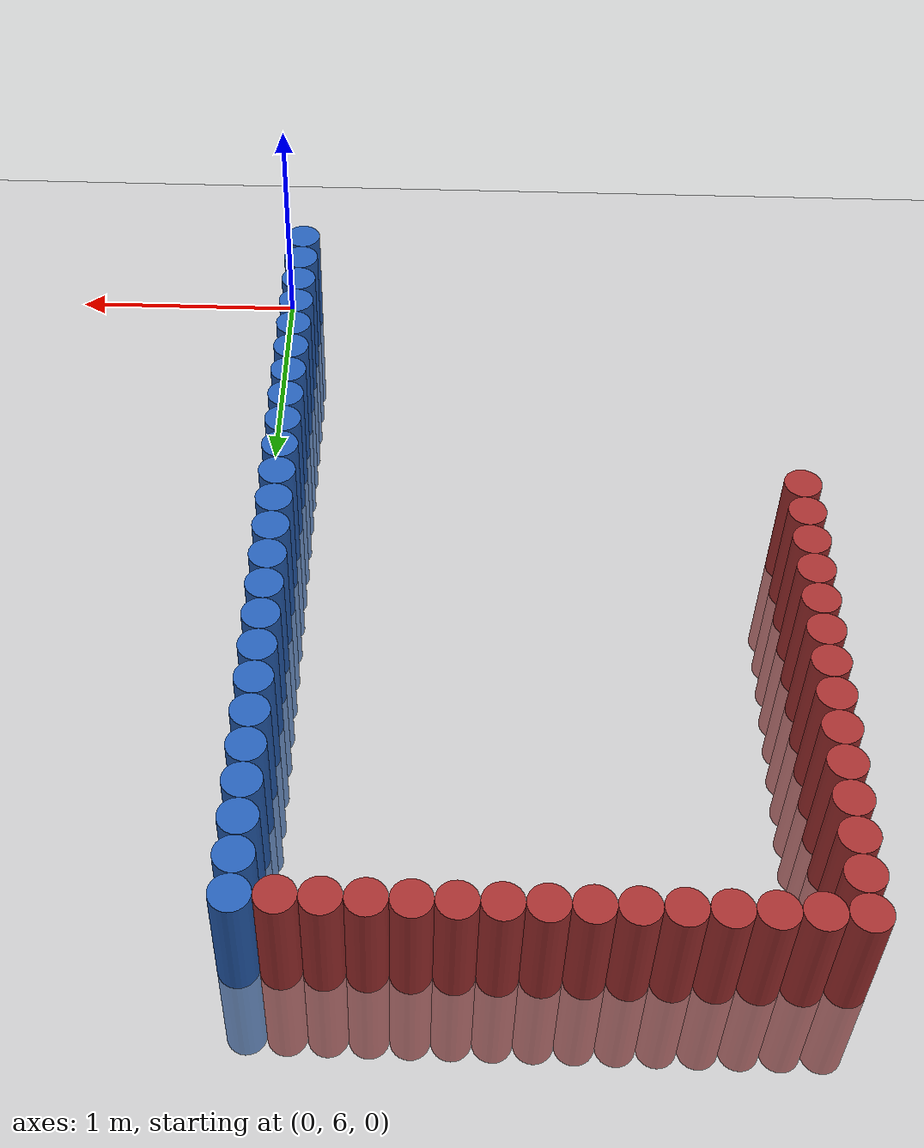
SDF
<sdf version="1.6">
 <world name="default">
  <model name="ground_plane">
   <static>1</static>
   <link name="link">
    <collision name="collision">
     <geometry><plane><normal>0 0 1</normal><size>100 100</size></plane></geometry>
     <surface><friction><ode><mu>100</mu><mu2>50</mu2></ode></friction></surface>
    </collision>
    <visual name="visual">
     <cast_shadows>0</cast_shadows>
     <geometry><plane><normal>0 0 1</normal><size>100 100</size></plane></geometry>
     <material>
      <script><uri>file://media/materials/scripts/gazebo.material</uri><name>Gazebo/Grey</name></script>
     </material>
    </visual>
   </link>
  </model>
  <model name="unit_cylinder_387">
   <static>1</static>
   <pose>-2.175000 7.575000 0.000000 0.000000 0.000000 0.000000</pose>
   <link name="link">
    <inertial>
     <mass>1</mass>
     <inertia><ixx>0.145833</ixx><ixy>0</ixy><ixz>0</ixz><iyy>0.145833</iyy><iyz>0</iyz><izz>0.125</izz></inertia>
    </inertial>
    <collision name="collision">
     <geometry><cylinder><radius>0.075000</radius><length>1</length></cylinder></geometry>
    </collision>
    <visual name="visual">
     <geometry><cylinder><radius>0.075000</radius><length>1</length></cylinder></geometry>
     <material>
      <ambient>0.648000 0.192000 0.192000 1</ambient>
      <diffuse>0.648000 0.192000 0.192000 1</diffuse>
     </material>
     <material>
      <script><name>Gazebo/Grey</name><uri>file://media/materials/scripts/gazebo.material</uri></script>
     </material>
    </visual>
   </link>
  </model>
  <model name="unit_cylinder_388">
   <static>1</static>
   <pose>-2.175000 7.725000 0.000000 0.000000 0.000000 0.000000</pose>
   <link name="link">
    <inertial>
     <mass>1</mass>
     <inertia><ixx>0.145833</ixx><ixy>0</ixy><ixz>0</ixz><iyy>0.145833</iyy><iyz>0</iyz><izz>0.125</izz></inertia>
    </inertial>
    <collision name="collision">
     <geometry><cylinder><radius>0.075000</radius><length>1</length></cylinder></geometry>
    </collision>
    <visual name="visual">
     <geometry><cylinder><radius>0.075000</radius><length>1</length></cylinder></geometry>
     <material>
      <ambient>0.648000 0.192000 0.192000 1</ambient>
      <diffuse>0.648000 0.192000 0.192000 1</diffuse>
     </material>
     <material>
      <script><name>Gazebo/Grey</name><uri>file://media/materials/scripts/gazebo.material</uri></script>
     </material>
    </visual>
   </link>
  </model>
  <model name="unit_cylinder_389">
   <static>1</static>
   <pose>-2.175000 7.875000 0.000000 0.000000 0.000000 0.000000</pose>
   <link name="link">
    <inertial>
     <mass>1</mass>
     <inertia><ixx>0.145833</ixx><ixy>0</ixy><ixz>0</ixz><iyy>0.145833</iyy><iyz>0</iyz><izz>0.125</izz></inertia>
    </inertial>
    <collision name="collision">
     <geometry><cylinder><radius>0.075000</radius><length>1</length></cylinder></geometry>
    </collision>
    <visual name="visual">
     <geometry><cylinder><radius>0.075000</radius><length>1</length></cylinder></geometry>
     <material>
      <ambient>0.648000 0.192000 0.192000 1</ambient>
      <diffuse>0.648000 0.192000 0.192000 1</diffuse>
     </material>
     <material>
      <script><name>Gazebo/Grey</name><uri>file://media/materials/scripts/gazebo.material</uri></script>
     </material>
    </visual>
   </link>
  </model>
  <model name="unit_cylinder_390">
   <static>1</static>
   <pose>-2.175000 8.025000 0.000000 0.000000 0.000000 0.000000</pose>
   <link name="link">
    <inertial>
     <mass>1</mass>
     <inertia><ixx>0.145833</ixx><ixy>0</ixy><ixz>0</ixz><iyy>0.145833</iyy><iyz>0</iyz><izz>0.125</izz></inertia>
    </inertial>
    <collision name="collision">
     <geometry><cylinder><radius>0.075000</radius><length>1</length></cylinder></geometry>
    </collision>
    <visual name="visual">
     <geometry><cylinder><radius>0.075000</radius><length>1</length></cylinder></geometry>
     <material>
      <ambient>0.648000 0.192000 0.192000 1</ambient>
      <diffuse>0.648000 0.192000 0.192000 1</diffuse>
     </material>
     <material>
      <script><name>Gazebo/Grey</name><uri>file://media/materials/scripts/gazebo.material</uri></script>
     </material>
    </visual>
   </link>
  </model>
  <model name="unit_cylinder_391">
   <static>1</static>
   <pose>-2.175000 8.175000 0.000000 0.000000 0.000000 0.000000</pose>
   <link name="link">
    <inertial>
     <mass>1</mass>
     <inertia><ixx>0.145833</ixx><ixy>0</ixy><ixz>0</ixz><iyy>0.145833</iyy><iyz>0</iyz><izz>0.125</izz></inertia>
    </inertial>
    <collision name="collision">
     <geometry><cylinder><radius>0.075000</radius><length>1</length></cylinder></geometry>
    </collision>
    <visual name="visual">
     <geometry><cylinder><radius>0.075000</radius><length>1</length></cylinder></geometry>
     <material>
      <ambient>0.648000 0.192000 0.192000 1</ambient>
      <diffuse>0.648000 0.192000 0.192000 1</diffuse>
     </material>
     <material>
      <script><name>Gazebo/Grey</name><uri>file://media/materials/scripts/gazebo.material</uri></script>
     </material>
    </visual>
   </link>
  </model>
  <model name="unit_cylinder_392">
   <static>1</static>
   <pose>-2.175000 8.325000 0.000000 0.000000 0.000000 0.000000</pose>
   <link name="link">
    <inertial>
     <mass>1</mass>
     <inertia><ixx>0.145833</ixx><ixy>0</ixy><ixz>0</ixz><iyy>0.145833</iyy><iyz>0</iyz><izz>0.125</izz></inertia>
    </inertial>
    <collision name="collision">
     <geometry><cylinder><radius>0.075000</radius><length>1</length></cylinder></geometry>
    </collision>
    <visual name="visual">
     <geometry><cylinder><radius>0.075000</radius><length>1</length></cylinder></geometry>
     <material>
      <ambient>0.648000 0.192000 0.192000 1</ambient>
      <diffuse>0.648000 0.192000 0.192000 1</diffuse>
     </material>
     <material>
      <script><name>Gazebo/Grey</name><uri>file://media/materials/scripts/gazebo.material</uri></script>
     </material>
    </visual>
   </link>
  </model>
  <model name="unit_cylinder_393">
   <static>1</static>
   <pose>-2.175000 8.475000 0.000000 0.000000 0.000000 0.000000</pose>
   <link name="link">
    <inertial>
     <mass>1</mass>
     <inertia><ixx>0.145833</ixx><ixy>0</ixy><ixz>0</ixz><iyy>0.145833</iyy><iyz>0</iyz><izz>0.125</izz></inertia>
    </inertial>
    <collision name="collision">
     <geometry><cylinder><radius>0.075000</radius><length>1</length></cylinder></geometry>
    </collision>
    <visual name="visual">
     <geometry><cylinder><radius>0.075000</radius><length>1</length></cylinder></geometry>
     <material>
      <ambient>0.648000 0.192000 0.192000 1</ambient>
      <diffuse>0.648000 0.192000 0.192000 1</diffuse>
     </material>
     <material>
      <script><name>Gazebo/Grey</name><uri>file://media/materials/scripts/gazebo.material</uri></script>
     </material>
    </visual>
   </link>
  </model>
  <model name="unit_cylinder_394">
   <static>1</static>
   <pose>-2.175000 8.625000 0.000000 0.000000 0.000000 0.000000</pose>
   <link name="link">
    <inertial>
     <mass>1</mass>
     <inertia><ixx>0.145833</ixx><ixy>0</ixy><ixz>0</ixz><iyy>0.145833</iyy><iyz>0</iyz><izz>0.125</izz></inertia>
    </inertial>
    <collision name="collision">
     <geometry><cylinder><radius>0.075000</radius><length>1</length></cylinder></geometry>
    </collision>
    <visual name="visual">
     <geometry><cylinder><radius>0.075000</radius><length>1</length></cylinder></geometry>
     <material>
      <ambient>0.648000 0.192000 0.192000 1</ambient>
      <diffuse>0.648000 0.192000 0.192000 1</diffuse>
     </material>
     <material>
      <script><name>Gazebo/Grey</name><uri>file://media/materials/scripts/gazebo.material</uri></script>
     </material>
    </visual>
   </link>
  </model>
  <model name="unit_cylinder_395">
   <static>1</static>
   <pose>-2.175000 8.775000 0.000000 0.000000 0.000000 0.000000</pose>
   <link name="link">
    <inertial>
     <mass>1</mass>
     <inertia><ixx>0.145833</ixx><ixy>0</ixy><ixz>0</ixz><iyy>0.145833</iyy><iyz>0</iyz><izz>0.125</izz></inertia>
    </inertial>
    <collision name="collision">
     <geometry><cylinder><radius>0.075000</radius><length>1</length></cylinder></geometry>
    </collision>
    <visual name="visual">
     <geometry><cylinder><radius>0.075000</radius><length>1</length></cylinder></geometry>
     <material>
      <ambient>0.648000 0.192000 0.192000 1</ambient>
      <diffuse>0.648000 0.192000 0.192000 1</diffuse>
     </material>
     <material>
      <script><name>Gazebo/Grey</name><uri>file://media/materials/scripts/gazebo.material</uri></script>
     </material>
    </visual>
   </link>
  </model>
  <model name="unit_cylinder_396">
   <static>1</static>
   <pose>-2.175000 8.925000 0.000000 0.000000 0.000000 0.000000</pose>
   <link name="link">
    <inertial>
     <mass>1</mass>
     <inertia><ixx>0.145833</ixx><ixy>0</ixy><ixz>0</ixz><iyy>0.145833</iyy><iyz>0</iyz><izz>0.125</izz></inertia>
    </inertial>
    <collision name="collision">
     <geometry><cylinder><radius>0.075000</radius><length>1</length></cylinder></geometry>
    </collision>
    <visual name="visual">
     <geometry><cylinder><radius>0.075000</radius><length>1</length></cylinder></geometry>
     <material>
      <ambient>0.648000 0.192000 0.192000 1</ambient>
      <diffuse>0.648000 0.192000 0.192000 1</diffuse>
     </material>
     <material>
      <script><name>Gazebo/Grey</name><uri>file://media/materials/scripts/gazebo.material</uri></script>
     </material>
    </visual>
   </link>
  </model>
  <model name="unit_cylinder_397">
   <static>1</static>
   <pose>-2.175000 9.075000 0.000000 0.000000 0.000000 0.000000</pose>
   <link name="link">
    <inertial>
     <mass>1</mass>
     <inertia><ixx>0.145833</ixx><ixy>0</ixy><ixz>0</ixz><iyy>0.145833</iyy><iyz>0</iyz><izz>0.125</izz></inertia>
    </inertial>
    <collision name="collision">
     <geometry><cylinder><radius>0.075000</radius><length>1</length></cylinder></geometry>
    </collision>
    <visual name="visual">
     <geometry><cylinder><radius>0.075000</radius><length>1</length></cylinder></geometry>
     <material>
      <ambient>0.648000 0.192000 0.192000 1</ambient>
      <diffuse>0.648000 0.192000 0.192000 1</diffuse>
     </material>
     <material>
      <script><name>Gazebo/Grey</name><uri>file://media/materials/scripts/gazebo.material</uri></script>
     </material>
    </visual>
   </link>
  </model>
  <model name="unit_cylinder_398">
   <static>1</static>
   <pose>-2.175000 9.225000 0.000000 0.000000 0.000000 0.000000</pose>
   <link name="link">
    <inertial>
     <mass>1</mass>
     <inertia><ixx>0.145833</ixx><ixy>0</ixy><ixz>0</ixz><iyy>0.145833</iyy><iyz>0</iyz><izz>0.125</izz></inertia>
    </inertial>
    <collision name="collision">
     <geometry><cylinder><radius>0.075000</radius><length>1</length></cylinder></geometry>
    </collision>
    <visual name="visual">
     <geometry><cylinder><radius>0.075000</radius><length>1</length></cylinder></geometry>
     <material>
      <ambient>0.648000 0.192000 0.192000 1</ambient>
      <diffuse>0.648000 0.192000 0.192000 1</diffuse>
     </material>
     <material>
      <script><name>Gazebo/Grey</name><uri>file://media/materials/scripts/gazebo.material</uri></script>
     </material>
    </visual>
   </link>
  </model>
  <model name="unit_cylinder_399">
   <static>1</static>
   <pose>-2.175000 9.375000 0.000000 0.000000 0.000000 0.000000</pose>
   <link name="link">
    <inertial>
     <mass>1</mass>
     <inertia><ixx>0.145833</ixx><ixy>0</ixy><ixz>0</ixz><iyy>0.145833</iyy><iyz>0</iyz><izz>0.125</izz></inertia>
    </inertial>
    <collision name="collision">
     <geometry><cylinder><radius>0.075000</radius><length>1</length></cylinder></geometry>
    </collision>
    <visual name="visual">
     <geometry><cylinder><radius>0.075000</radius><length>1</length></cylinder></geometry>
     <material>
      <ambient>0.648000 0.192000 0.192000 1</ambient>
      <diffuse>0.648000 0.192000 0.192000 1</diffuse>
     </material>
     <material>
      <script><name>Gazebo/Grey</name><uri>file://media/materials/scripts/gazebo.material</uri></script>
     </material>
    </visual>
   </link>
  </model>
  <model name="unit_cylinder_400">
   <static>1</static>
   <pose>-2.175000 9.525000 0.000000 0.000000 0.000000 0.000000</pose>
   <link name="link">
    <inertial>
     <mass>1</mass>
     <inertia><ixx>0.145833</ixx><ixy>0</ixy><ixz>0</ixz><iyy>0.145833</iyy><iyz>0</iyz><izz>0.125</izz></inertia>
    </inertial>
    <collision name="collision">
     <geometry><cylinder><radius>0.075000</radius><length>1</length></cylinder></geometry>
    </collision>
    <visual name="visual">
     <geometry><cylinder><radius>0.075000</radius><length>1</length></cylinder></geometry>
     <material>
      <ambient>0.648000 0.192000 0.192000 1</ambient>
      <diffuse>0.648000 0.192000 0.192000 1</diffuse>
     </material>
     <material>
      <script><name>Gazebo/Grey</name><uri>file://media/materials/scripts/gazebo.material</uri></script>
     </material>
    </visual>
   </link>
  </model>
  <model name="unit_cylinder_402">
   <static>1</static>
   <pose>-2.025000 9.525000 0.000000 0.000000 0.000000 0.000000</pose>
   <link name="link">
    <inertial>
     <mass>1</mass>
     <inertia><ixx>0.145833</ixx><ixy>0</ixy><ixz>0</ixz><iyy>0.145833</iyy><iyz>0</iyz><izz>0.125</izz></inertia>
    </inertial>
    <collision name="collision">
     <geometry><cylinder><radius>0.075000</radius><length>1</length></cylinder></geometry>
    </collision>
    <visual name="visual">
     <geometry><cylinder><radius>0.075000</radius><length>1</length></cylinder></geometry>
     <material>
      <ambient>0.648000 0.192000 0.192000 1</ambient>
      <diffuse>0.648000 0.192000 0.192000 1</diffuse>
     </material>
     <material>
      <script><name>Gazebo/Grey</name><uri>file://media/materials/scripts/gazebo.material</uri></script>
     </material>
    </visual>
   </link>
  </model>
  <model name="unit_cylinder_404">
   <static>1</static>
   <pose>-1.875000 9.525000 0.000000 0.000000 0.000000 0.000000</pose>
   <link name="link">
    <inertial>
     <mass>1</mass>
     <inertia><ixx>0.145833</ixx><ixy>0</ixy><ixz>0</ixz><iyy>0.145833</iyy><iyz>0</iyz><izz>0.125</izz></inertia>
    </inertial>
    <collision name="collision">
     <geometry><cylinder><radius>0.075000</radius><length>1</length></cylinder></geometry>
    </collision>
    <visual name="visual">
     <geometry><cylinder><radius>0.075000</radius><length>1</length></cylinder></geometry>
     <material>
      <ambient>0.648000 0.192000 0.192000 1</ambient>
      <diffuse>0.648000 0.192000 0.192000 1</diffuse>
     </material>
     <material>
      <script><name>Gazebo/Grey</name><uri>file://media/materials/scripts/gazebo.material</uri></script>
     </material>
    </visual>
   </link>
  </model>
  <model name="unit_cylinder_406">
   <static>1</static>
   <pose>-1.725000 9.525000 0.000000 0.000000 0.000000 0.000000</pose>
   <link name="link">
    <inertial>
     <mass>1</mass>
     <inertia><ixx>0.145833</ixx><ixy>0</ixy><ixz>0</ixz><iyy>0.145833</iyy><iyz>0</iyz><izz>0.125</izz></inertia>
    </inertial>
    <collision name="collision">
     <geometry><cylinder><radius>0.075000</radius><length>1</length></cylinder></geometry>
    </collision>
    <visual name="visual">
     <geometry><cylinder><radius>0.075000</radius><length>1</length></cylinder></geometry>
     <material>
      <ambient>0.648000 0.192000 0.192000 1</ambient>
      <diffuse>0.648000 0.192000 0.192000 1</diffuse>
     </material>
     <material>
      <script><name>Gazebo/Grey</name><uri>file://media/materials/scripts/gazebo.material</uri></script>
     </material>
    </visual>
   </link>
  </model>
  <model name="unit_cylinder_408">
   <static>1</static>
   <pose>-1.575000 9.525000 0.000000 0.000000 0.000000 0.000000</pose>
   <link name="link">
    <inertial>
     <mass>1</mass>
     <inertia><ixx>0.145833</ixx><ixy>0</ixy><ixz>0</ixz><iyy>0.145833</iyy><iyz>0</iyz><izz>0.125</izz></inertia>
    </inertial>
    <collision name="collision">
     <geometry><cylinder><radius>0.075000</radius><length>1</length></cylinder></geometry>
    </collision>
    <visual name="visual">
     <geometry><cylinder><radius>0.075000</radius><length>1</length></cylinder></geometry>
     <material>
      <ambient>0.648000 0.192000 0.192000 1</ambient>
      <diffuse>0.648000 0.192000 0.192000 1</diffuse>
     </material>
     <material>
      <script><name>Gazebo/Grey</name><uri>file://media/materials/scripts/gazebo.material</uri></script>
     </material>
    </visual>
   </link>
  </model>
  <model name="unit_cylinder_410">
   <static>1</static>
   <pose>-1.425000 9.525000 0.000000 0.000000 0.000000 0.000000</pose>
   <link name="link">
    <inertial>
     <mass>1</mass>
     <inertia><ixx>0.145833</ixx><ixy>0</ixy><ixz>0</ixz><iyy>0.145833</iyy><iyz>0</iyz><izz>0.125</izz></inertia>
    </inertial>
    <collision name="collision">
     <geometry><cylinder><radius>0.075000</radius><length>1</length></cylinder></geometry>
    </collision>
    <visual name="visual">
     <geometry><cylinder><radius>0.075000</radius><length>1</length></cylinder></geometry>
     <material>
      <ambient>0.648000 0.192000 0.192000 1</ambient>
      <diffuse>0.648000 0.192000 0.192000 1</diffuse>
     </material>
     <material>
      <script><name>Gazebo/Grey</name><uri>file://media/materials/scripts/gazebo.material</uri></script>
     </material>
    </visual>
   </link>
  </model>
  <model name="unit_cylinder_412">
   <static>1</static>
   <pose>-1.275000 9.525000 0.000000 0.000000 0.000000 0.000000</pose>
   <link name="link">
    <inertial>
     <mass>1</mass>
     <inertia><ixx>0.145833</ixx><ixy>0</ixy><ixz>0</ixz><iyy>0.145833</iyy><iyz>0</iyz><izz>0.125</izz></inertia>
    </inertial>
    <collision name="collision">
     <geometry><cylinder><radius>0.075000</radius><length>1</length></cylinder></geometry>
    </collision>
    <visual name="visual">
     <geometry><cylinder><radius>0.075000</radius><length>1</length></cylinder></geometry>
     <material>
      <ambient>0.648000 0.192000 0.192000 1</ambient>
      <diffuse>0.648000 0.192000 0.192000 1</diffuse>
     </material>
     <material>
      <script><name>Gazebo/Grey</name><uri>file://media/materials/scripts/gazebo.material</uri></script>
     </material>
    </visual>
   </link>
  </model>
  <model name="unit_cylinder_414">
   <static>1</static>
   <pose>-1.125000 9.525000 0.000000 0.000000 0.000000 0.000000</pose>
   <link name="link">
    <inertial>
     <mass>1</mass>
     <inertia><ixx>0.145833</ixx><ixy>0</ixy><ixz>0</ixz><iyy>0.145833</iyy><iyz>0</iyz><izz>0.125</izz></inertia>
    </inertial>
    <collision name="collision">
     <geometry><cylinder><radius>0.075000</radius><length>1</length></cylinder></geometry>
    </collision>
    <visual name="visual">
     <geometry><cylinder><radius>0.075000</radius><length>1</length></cylinder></geometry>
     <material>
      <ambient>0.648000 0.192000 0.192000 1</ambient>
      <diffuse>0.648000 0.192000 0.192000 1</diffuse>
     </material>
     <material>
      <script><name>Gazebo/Grey</name><uri>file://media/materials/scripts/gazebo.material</uri></script>
     </material>
    </visual>
   </link>
  </model>
  <model name="unit_cylinder_416">
   <static>1</static>
   <pose>-0.975000 9.525000 0.000000 0.000000 0.000000 0.000000</pose>
   <link name="link">
    <inertial>
     <mass>1</mass>
     <inertia><ixx>0.145833</ixx><ixy>0</ixy><ixz>0</ixz><iyy>0.145833</iyy><iyz>0</iyz><izz>0.125</izz></inertia>
    </inertial>
    <collision name="collision">
     <geometry><cylinder><radius>0.075000</radius><length>1</length></cylinder></geometry>
    </collision>
    <visual name="visual">
     <geometry><cylinder><radius>0.075000</radius><length>1</length></cylinder></geometry>
     <material>
      <ambient>0.648000 0.192000 0.192000 1</ambient>
      <diffuse>0.648000 0.192000 0.192000 1</diffuse>
     </material>
     <material>
      <script><name>Gazebo/Grey</name><uri>file://media/materials/scripts/gazebo.material</uri></script>
     </material>
    </visual>
   </link>
  </model>
  <model name="unit_cylinder_418">
   <static>1</static>
   <pose>-0.825000 9.525000 0.000000 0.000000 0.000000 0.000000</pose>
   <link name="link">
    <inertial>
     <mass>1</mass>
     <inertia><ixx>0.145833</ixx><ixy>0</ixy><ixz>0</ixz><iyy>0.145833</iyy><iyz>0</iyz><izz>0.125</izz></inertia>
    </inertial>
    <collision name="collision">
     <geometry><cylinder><radius>0.075000</radius><length>1</length></cylinder></geometry>
    </collision>
    <visual name="visual">
     <geometry><cylinder><radius>0.075000</radius><length>1</length></cylinder></geometry>
     <material>
      <ambient>0.648000 0.192000 0.192000 1</ambient>
      <diffuse>0.648000 0.192000 0.192000 1</diffuse>
     </material>
     <material>
      <script><name>Gazebo/Grey</name><uri>file://media/materials/scripts/gazebo.material</uri></script>
     </material>
    </visual>
   </link>
  </model>
  <model name="unit_cylinder_420">
   <static>1</static>
   <pose>-0.675000 9.525000 0.000000 0.000000 0.000000 0.000000</pose>
   <link name="link">
    <inertial>
     <mass>1</mass>
     <inertia><ixx>0.145833</ixx><ixy>0</ixy><ixz>0</ixz><iyy>0.145833</iyy><iyz>0</iyz><izz>0.125</izz></inertia>
    </inertial>
    <collision name="collision">
     <geometry><cylinder><radius>0.075000</radius><length>1</length></cylinder></geometry>
    </collision>
    <visual name="visual">
     <geometry><cylinder><radius>0.075000</radius><length>1</length></cylinder></geometry>
     <material>
      <ambient>0.648000 0.192000 0.192000 1</ambient>
      <diffuse>0.648000 0.192000 0.192000 1</diffuse>
     </material>
     <material>
      <script><name>Gazebo/Grey</name><uri>file://media/materials/scripts/gazebo.material</uri></script>
     </material>
    </visual>
   </link>
  </model>
  <model name="unit_cylinder_422">
   <static>1</static>
   <pose>-0.525000 9.525000 0.000000 0.000000 0.000000 0.000000</pose>
   <link name="link">
    <inertial>
     <mass>1</mass>
     <inertia><ixx>0.145833</ixx><ixy>0</ixy><ixz>0</ixz><iyy>0.145833</iyy><iyz>0</iyz><izz>0.125</izz></inertia>
    </inertial>
    <collision name="collision">
     <geometry><cylinder><radius>0.075000</radius><length>1</length></cylinder></geometry>
    </collision>
    <visual name="visual">
     <geometry><cylinder><radius>0.075000</radius><length>1</length></cylinder></geometry>
     <material>
      <ambient>0.648000 0.192000 0.192000 1</ambient>
      <diffuse>0.648000 0.192000 0.192000 1</diffuse>
     </material>
     <material>
      <script><name>Gazebo/Grey</name><uri>file://media/materials/scripts/gazebo.material</uri></script>
     </material>
    </visual>
   </link>
  </model>
  <model name="unit_cylinder_424">
   <static>1</static>
   <pose>-0.375000 9.525000 0.000000 0.000000 0.000000 0.000000</pose>
   <link name="link">
    <inertial>
     <mass>1</mass>
     <inertia><ixx>0.145833</ixx><ixy>0</ixy><ixz>0</ixz><iyy>0.145833</iyy><iyz>0</iyz><izz>0.125</izz></inertia>
    </inertial>
    <collision name="collision">
     <geometry><cylinder><radius>0.075000</radius><length>1</length></cylinder></geometry>
    </collision>
    <visual name="visual">
     <geometry><cylinder><radius>0.075000</radius><length>1</length></cylinder></geometry>
     <material>
      <ambient>0.648000 0.192000 0.192000 1</ambient>
      <diffuse>0.648000 0.192000 0.192000 1</diffuse>
     </material>
     <material>
      <script><name>Gazebo/Grey</name><uri>file://media/materials/scripts/gazebo.material</uri></script>
     </material>
    </visual>
   </link>
  </model>
  <model name="unit_cylinder_426">
   <static>1</static>
   <pose>-0.225000 9.525000 0.000000 0.000000 0.000000 0.000000</pose>
   <link name="link">
    <inertial>
     <mass>1</mass>
     <inertia><ixx>0.145833</ixx><ixy>0</ixy><ixz>0</ixz><iyy>0.145833</iyy><iyz>0</iyz><izz>0.125</izz></inertia>
    </inertial>
    <collision name="collision">
     <geometry><cylinder><radius>0.075000</radius><length>1</length></cylinder></geometry>
    </collision>
    <visual name="visual">
     <geometry><cylinder><radius>0.075000</radius><length>1</length></cylinder></geometry>
     <material>
      <ambient>0.648000 0.192000 0.192000 1</ambient>
      <diffuse>0.648000 0.192000 0.192000 1</diffuse>
     </material>
     <material>
      <script><name>Gazebo/Grey</name><uri>file://media/materials/scripts/gazebo.material</uri></script>
     </material>
    </visual>
   </link>
  </model>
  <model name="unit_cylinder_433">
   <static>1</static>
   <pose>-0.075000 6.075000 0.000000 0.000000 0.000000 0.000000</pose>
   <link name="link">
    <inertial>
     <mass>1</mass>
     <inertia><ixx>0.145833</ixx><ixy>0</ixy><ixz>0</ixz><iyy>0.145833</iyy><iyz>0</iyz><izz>0.125</izz></inertia>
    </inertial>
    <collision name="collision">
     <geometry><cylinder><radius>0.075000</radius><length>1</length></cylinder></geometry>
    </collision>
    <visual name="visual">
     <geometry><cylinder><radius>0.075000</radius><length>1</length></cylinder></geometry>
     <material>
      <ambient>0.152000 0.379000 0.720000 1</ambient>
      <diffuse>0.152000 0.379000 0.720000 1</diffuse>
     </material>
     <material>
      <script><name>Gazebo/Grey</name><uri>file://media/materials/scripts/gazebo.material</uri></script>
     </material>
    </visual>
   </link>
  </model>
  <model name="unit_cylinder_434">
   <static>1</static>
   <pose>-0.075000 6.225000 0.000000 0.000000 0.000000 0.000000</pose>
   <link name="link">
    <inertial>
     <mass>1</mass>
     <inertia><ixx>0.145833</ixx><ixy>0</ixy><ixz>0</ixz><iyy>0.145833</iyy><iyz>0</iyz><izz>0.125</izz></inertia>
    </inertial>
    <collision name="collision">
     <geometry><cylinder><radius>0.075000</radius><length>1</length></cylinder></geometry>
    </collision>
    <visual name="visual">
     <geometry><cylinder><radius>0.075000</radius><length>1</length></cylinder></geometry>
     <material>
      <ambient>0.152000 0.379000 0.720000 1</ambient>
      <diffuse>0.152000 0.379000 0.720000 1</diffuse>
     </material>
     <material>
      <script><name>Gazebo/Grey</name><uri>file://media/materials/scripts/gazebo.material</uri></script>
     </material>
    </visual>
   </link>
  </model>
  <model name="unit_cylinder_435">
   <static>1</static>
   <pose>-0.075000 6.375000 0.000000 0.000000 0.000000 0.000000</pose>
   <link name="link">
    <inertial>
     <mass>1</mass>
     <inertia><ixx>0.145833</ixx><ixy>0</ixy><ixz>0</ixz><iyy>0.145833</iyy><iyz>0</iyz><izz>0.125</izz></inertia>
    </inertial>
    <collision name="collision">
     <geometry><cylinder><radius>0.075000</radius><length>1</length></cylinder></geometry>
    </collision>
    <visual name="visual">
     <geometry><cylinder><radius>0.075000</radius><length>1</length></cylinder></geometry>
     <material>
      <ambient>0.152000 0.379000 0.720000 1</ambient>
      <diffuse>0.152000 0.379000 0.720000 1</diffuse>
     </material>
     <material>
      <script><name>Gazebo/Grey</name><uri>file://media/materials/scripts/gazebo.material</uri></script>
     </material>
    </visual>
   </link>
  </model>
  <model name="unit_cylinder_436">
   <static>1</static>
   <pose>-0.075000 6.525000 0.000000 0.000000 0.000000 0.000000</pose>
   <link name="link">
    <inertial>
     <mass>1</mass>
     <inertia><ixx>0.145833</ixx><ixy>0</ixy><ixz>0</ixz><iyy>0.145833</iyy><iyz>0</iyz><izz>0.125</izz></inertia>
    </inertial>
    <collision name="collision">
     <geometry><cylinder><radius>0.075000</radius><length>1</length></cylinder></geometry>
    </collision>
    <visual name="visual">
     <geometry><cylinder><radius>0.075000</radius><length>1</length></cylinder></geometry>
     <material>
      <ambient>0.152000 0.379000 0.720000 1</ambient>
      <diffuse>0.152000 0.379000 0.720000 1</diffuse>
     </material>
     <material>
      <script><name>Gazebo/Grey</name><uri>file://media/materials/scripts/gazebo.material</uri></script>
     </material>
    </visual>
   </link>
  </model>
  <model name="unit_cylinder_437">
   <static>1</static>
   <pose>-0.075000 6.675000 0.000000 0.000000 0.000000 0.000000</pose>
   <link name="link">
    <inertial>
     <mass>1</mass>
     <inertia><ixx>0.145833</ixx><ixy>0</ixy><ixz>0</ixz><iyy>0.145833</iyy><iyz>0</iyz><izz>0.125</izz></inertia>
    </inertial>
    <collision name="collision">
     <geometry><cylinder><radius>0.075000</radius><length>1</length></cylinder></geometry>
    </collision>
    <visual name="visual">
     <geometry><cylinder><radius>0.075000</radius><length>1</length></cylinder></geometry>
     <material>
      <ambient>0.152000 0.379000 0.720000 1</ambient>
      <diffuse>0.152000 0.379000 0.720000 1</diffuse>
     </material>
     <material>
      <script><name>Gazebo/Grey</name><uri>file://media/materials/scripts/gazebo.material</uri></script>
     </material>
    </visual>
   </link>
  </model>
  <model name="unit_cylinder_438">
   <static>1</static>
   <pose>-0.075000 6.825000 0.000000 0.000000 0.000000 0.000000</pose>
   <link name="link">
    <inertial>
     <mass>1</mass>
     <inertia><ixx>0.145833</ixx><ixy>0</ixy><ixz>0</ixz><iyy>0.145833</iyy><iyz>0</iyz><izz>0.125</izz></inertia>
    </inertial>
    <collision name="collision">
     <geometry><cylinder><radius>0.075000</radius><length>1</length></cylinder></geometry>
    </collision>
    <visual name="visual">
     <geometry><cylinder><radius>0.075000</radius><length>1</length></cylinder></geometry>
     <material>
      <ambient>0.152000 0.379000 0.720000 1</ambient>
      <diffuse>0.152000 0.379000 0.720000 1</diffuse>
     </material>
     <material>
      <script><name>Gazebo/Grey</name><uri>file://media/materials/scripts/gazebo.material</uri></script>
     </material>
    </visual>
   </link>
  </model>
  <model name="unit_cylinder_439">
   <static>1</static>
   <pose>-0.075000 6.975000 0.000000 0.000000 0.000000 0.000000</pose>
   <link name="link">
    <inertial>
     <mass>1</mass>
     <inertia><ixx>0.145833</ixx><ixy>0</ixy><ixz>0</ixz><iyy>0.145833</iyy><iyz>0</iyz><izz>0.125</izz></inertia>
    </inertial>
    <collision name="collision">
     <geometry><cylinder><radius>0.075000</radius><length>1</length></cylinder></geometry>
    </collision>
    <visual name="visual">
     <geometry><cylinder><radius>0.075000</radius><length>1</length></cylinder></geometry>
     <material>
      <ambient>0.152000 0.379000 0.720000 1</ambient>
      <diffuse>0.152000 0.379000 0.720000 1</diffuse>
     </material>
     <material>
      <script><name>Gazebo/Grey</name><uri>file://media/materials/scripts/gazebo.material</uri></script>
     </material>
    </visual>
   </link>
  </model>
  <model name="unit_cylinder_440">
   <static>1</static>
   <pose>-0.075000 7.125000 0.000000 0.000000 0.000000 0.000000</pose>
   <link name="link">
    <inertial>
     <mass>1</mass>
     <inertia><ixx>0.145833</ixx><ixy>0</ixy><ixz>0</ixz><iyy>0.145833</iyy><iyz>0</iyz><izz>0.125</izz></inertia>
    </inertial>
    <collision name="collision">
     <geometry><cylinder><radius>0.075000</radius><length>1</length></cylinder></geometry>
    </collision>
    <visual name="visual">
     <geometry><cylinder><radius>0.075000</radius><length>1</length></cylinder></geometry>
     <material>
      <ambient>0.152000 0.379000 0.720000 1</ambient>
      <diffuse>0.152000 0.379000 0.720000 1</diffuse>
     </material>
     <material>
      <script><name>Gazebo/Grey</name><uri>file://media/materials/scripts/gazebo.material</uri></script>
     </material>
    </visual>
   </link>
  </model>
  <model name="unit_cylinder_441">
   <static>1</static>
   <pose>-0.075000 7.275000 0.000000 0.000000 0.000000 0.000000</pose>
   <link name="link">
    <inertial>
     <mass>1</mass>
     <inertia><ixx>0.145833</ixx><ixy>0</ixy><ixz>0</ixz><iyy>0.145833</iyy><iyz>0</iyz><izz>0.125</izz></inertia>
    </inertial>
    <collision name="collision">
     <geometry><cylinder><radius>0.075000</radius><length>1</length></cylinder></geometry>
    </collision>
    <visual name="visual">
     <geometry><cylinder><radius>0.075000</radius><length>1</length></cylinder></geometry>
     <material>
      <ambient>0.152000 0.379000 0.720000 1</ambient>
      <diffuse>0.152000 0.379000 0.720000 1</diffuse>
     </material>
     <material>
      <script><name>Gazebo/Grey</name><uri>file://media/materials/scripts/gazebo.material</uri></script>
     </material>
    </visual>
   </link>
  </model>
  <model name="unit_cylinder_442">
   <static>1</static>
   <pose>-0.075000 7.425000 0.000000 0.000000 0.000000 0.000000</pose>
   <link name="link">
    <inertial>
     <mass>1</mass>
     <inertia><ixx>0.145833</ixx><ixy>0</ixy><ixz>0</ixz><iyy>0.145833</iyy><iyz>0</iyz><izz>0.125</izz></inertia>
    </inertial>
    <collision name="collision">
     <geometry><cylinder><radius>0.075000</radius><length>1</length></cylinder></geometry>
    </collision>
    <visual name="visual">
     <geometry><cylinder><radius>0.075000</radius><length>1</length></cylinder></geometry>
     <material>
      <ambient>0.152000 0.379000 0.720000 1</ambient>
      <diffuse>0.152000 0.379000 0.720000 1</diffuse>
     </material>
     <material>
      <script><name>Gazebo/Grey</name><uri>file://media/materials/scripts/gazebo.material</uri></script>
     </material>
    </visual>
   </link>
  </model>
  <model name="unit_cylinder_443">
   <static>1</static>
   <pose>-0.075000 7.575000 0.000000 0.000000 0.000000 0.000000</pose>
   <link name="link">
    <inertial>
     <mass>1</mass>
     <inertia><ixx>0.145833</ixx><ixy>0</ixy><ixz>0</ixz><iyy>0.145833</iyy><iyz>0</iyz><izz>0.125</izz></inertia>
    </inertial>
    <collision name="collision">
     <geometry><cylinder><radius>0.075000</radius><length>1</length></cylinder></geometry>
    </collision>
    <visual name="visual">
     <geometry><cylinder><radius>0.075000</radius><length>1</length></cylinder></geometry>
     <material>
      <ambient>0.152000 0.379000 0.720000 1</ambient>
      <diffuse>0.152000 0.379000 0.720000 1</diffuse>
     </material>
     <material>
      <script><name>Gazebo/Grey</name><uri>file://media/materials/scripts/gazebo.material</uri></script>
     </material>
    </visual>
   </link>
  </model>
  <model name="unit_cylinder_444">
   <static>1</static>
   <pose>-0.075000 7.725000 0.000000 0.000000 0.000000 0.000000</pose>
   <link name="link">
    <inertial>
     <mass>1</mass>
     <inertia><ixx>0.145833</ixx><ixy>0</ixy><ixz>0</ixz><iyy>0.145833</iyy><iyz>0</iyz><izz>0.125</izz></inertia>
    </inertial>
    <collision name="collision">
     <geometry><cylinder><radius>0.075000</radius><length>1</length></cylinder></geometry>
    </collision>
    <visual name="visual">
     <geometry><cylinder><radius>0.075000</radius><length>1</length></cylinder></geometry>
     <material>
      <ambient>0.152000 0.379000 0.720000 1</ambient>
      <diffuse>0.152000 0.379000 0.720000 1</diffuse>
     </material>
     <material>
      <script><name>Gazebo/Grey</name><uri>file://media/materials/scripts/gazebo.material</uri></script>
     </material>
    </visual>
   </link>
  </model>
  <model name="unit_cylinder_445">
   <static>1</static>
   <pose>-0.075000 7.875000 0.000000 0.000000 0.000000 0.000000</pose>
   <link name="link">
    <inertial>
     <mass>1</mass>
     <inertia><ixx>0.145833</ixx><ixy>0</ixy><ixz>0</ixz><iyy>0.145833</iyy><iyz>0</iyz><izz>0.125</izz></inertia>
    </inertial>
    <collision name="collision">
     <geometry><cylinder><radius>0.075000</radius><length>1</length></cylinder></geometry>
    </collision>
    <visual name="visual">
     <geometry><cylinder><radius>0.075000</radius><length>1</length></cylinder></geometry>
     <material>
      <ambient>0.152000 0.379000 0.720000 1</ambient>
      <diffuse>0.152000 0.379000 0.720000 1</diffuse>
     </material>
     <material>
      <script><name>Gazebo/Grey</name><uri>file://media/materials/scripts/gazebo.material</uri></script>
     </material>
    </visual>
   </link>
  </model>
  <model name="unit_cylinder_446">
   <static>1</static>
   <pose>-0.075000 8.025000 0.000000 0.000000 0.000000 0.000000</pose>
   <link name="link">
    <inertial>
     <mass>1</mass>
     <inertia><ixx>0.145833</ixx><ixy>0</ixy><ixz>0</ixz><iyy>0.145833</iyy><iyz>0</iyz><izz>0.125</izz></inertia>
    </inertial>
    <collision name="collision">
     <geometry><cylinder><radius>0.075000</radius><length>1</length></cylinder></geometry>
    </collision>
    <visual name="visual">
     <geometry><cylinder><radius>0.075000</radius><length>1</length></cylinder></geometry>
     <material>
      <ambient>0.152000 0.379000 0.720000 1</ambient>
      <diffuse>0.152000 0.379000 0.720000 1</diffuse>
     </material>
     <material>
      <script><name>Gazebo/Grey</name><uri>file://media/materials/scripts/gazebo.material</uri></script>
     </material>
    </visual>
   </link>
  </model>
  <model name="unit_cylinder_447">
   <static>1</static>
   <pose>-0.075000 8.175000 0.000000 0.000000 0.000000 0.000000</pose>
   <link name="link">
    <inertial>
     <mass>1</mass>
     <inertia><ixx>0.145833</ixx><ixy>0</ixy><ixz>0</ixz><iyy>0.145833</iyy><iyz>0</iyz><izz>0.125</izz></inertia>
    </inertial>
    <collision name="collision">
     <geometry><cylinder><radius>0.075000</radius><length>1</length></cylinder></geometry>
    </collision>
    <visual name="visual">
     <geometry><cylinder><radius>0.075000</radius><length>1</length></cylinder></geometry>
     <material>
      <ambient>0.152000 0.379000 0.720000 1</ambient>
      <diffuse>0.152000 0.379000 0.720000 1</diffuse>
     </material>
     <material>
      <script><name>Gazebo/Grey</name><uri>file://media/materials/scripts/gazebo.material</uri></script>
     </material>
    </visual>
   </link>
  </model>
  <model name="unit_cylinder_448">
   <static>1</static>
   <pose>-0.075000 8.325000 0.000000 0.000000 0.000000 0.000000</pose>
   <link name="link">
    <inertial>
     <mass>1</mass>
     <inertia><ixx>0.145833</ixx><ixy>0</ixy><ixz>0</ixz><iyy>0.145833</iyy><iyz>0</iyz><izz>0.125</izz></inertia>
    </inertial>
    <collision name="collision">
     <geometry><cylinder><radius>0.075000</radius><length>1</length></cylinder></geometry>
    </collision>
    <visual name="visual">
     <geometry><cylinder><radius>0.075000</radius><length>1</length></cylinder></geometry>
     <material>
      <ambient>0.152000 0.379000 0.720000 1</ambient>
      <diffuse>0.152000 0.379000 0.720000 1</diffuse>
     </material>
     <material>
      <script><name>Gazebo/Grey</name><uri>file://media/materials/scripts/gazebo.material</uri></script>
     </material>
    </visual>
   </link>
  </model>
  <model name="unit_cylinder_449">
   <static>1</static>
   <pose>-0.075000 8.475000 0.000000 0.000000 0.000000 0.000000</pose>
   <link name="link">
    <inertial>
     <mass>1</mass>
     <inertia><ixx>0.145833</ixx><ixy>0</ixy><ixz>0</ixz><iyy>0.145833</iyy><iyz>0</iyz><izz>0.125</izz></inertia>
    </inertial>
    <collision name="collision">
     <geometry><cylinder><radius>0.075000</radius><length>1</length></cylinder></geometry>
    </collision>
    <visual name="visual">
     <geometry><cylinder><radius>0.075000</radius><length>1</length></cylinder></geometry>
     <material>
      <ambient>0.152000 0.379000 0.720000 1</ambient>
      <diffuse>0.152000 0.379000 0.720000 1</diffuse>
     </material>
     <material>
      <script><name>Gazebo/Grey</name><uri>file://media/materials/scripts/gazebo.material</uri></script>
     </material>
    </visual>
   </link>
  </model>
  <model name="unit_cylinder_450">
   <static>1</static>
   <pose>-0.075000 8.625000 0.000000 0.000000 0.000000 0.000000</pose>
   <link name="link">
    <inertial>
     <mass>1</mass>
     <inertia><ixx>0.145833</ixx><ixy>0</ixy><ixz>0</ixz><iyy>0.145833</iyy><iyz>0</iyz><izz>0.125</izz></inertia>
    </inertial>
    <collision name="collision">
     <geometry><cylinder><radius>0.075000</radius><length>1</length></cylinder></geometry>
    </collision>
    <visual name="visual">
     <geometry><cylinder><radius>0.075000</radius><length>1</length></cylinder></geometry>
     <material>
      <ambient>0.152000 0.379000 0.720000 1</ambient>
      <diffuse>0.152000 0.379000 0.720000 1</diffuse>
     </material>
     <material>
      <script><name>Gazebo/Grey</name><uri>file://media/materials/scripts/gazebo.material</uri></script>
     </material>
    </visual>
   </link>
  </model>
  <model name="unit_cylinder_451">
   <static>1</static>
   <pose>-0.075000 8.775000 0.000000 0.000000 0.000000 0.000000</pose>
   <link name="link">
    <inertial>
     <mass>1</mass>
     <inertia><ixx>0.145833</ixx><ixy>0</ixy><ixz>0</ixz><iyy>0.145833</iyy><iyz>0</iyz><izz>0.125</izz></inertia>
    </inertial>
    <collision name="collision">
     <geometry><cylinder><radius>0.075000</radius><length>1</length></cylinder></geometry>
    </collision>
    <visual name="visual">
     <geometry><cylinder><radius>0.075000</radius><length>1</length></cylinder></geometry>
     <material>
      <ambient>0.152000 0.379000 0.720000 1</ambient>
      <diffuse>0.152000 0.379000 0.720000 1</diffuse>
     </material>
     <material>
      <script><name>Gazebo/Grey</name><uri>file://media/materials/scripts/gazebo.material</uri></script>
     </material>
    </visual>
   </link>
  </model>
  <model name="unit_cylinder_452">
   <static>1</static>
   <pose>-0.075000 8.925000 0.000000 0.000000 0.000000 0.000000</pose>
   <link name="link">
    <inertial>
     <mass>1</mass>
     <inertia><ixx>0.145833</ixx><ixy>0</ixy><ixz>0</ixz><iyy>0.145833</iyy><iyz>0</iyz><izz>0.125</izz></inertia>
    </inertial>
    <collision name="collision">
     <geometry><cylinder><radius>0.075000</radius><length>1</length></cylinder></geometry>
    </collision>
    <visual name="visual">
     <geometry><cylinder><radius>0.075000</radius><length>1</length></cylinder></geometry>
     <material>
      <ambient>0.152000 0.379000 0.720000 1</ambient>
      <diffuse>0.152000 0.379000 0.720000 1</diffuse>
     </material>
     <material>
      <script><name>Gazebo/Grey</name><uri>file://media/materials/scripts/gazebo.material</uri></script>
     </material>
    </visual>
   </link>
  </model>
  <model name="unit_cylinder_453">
   <static>1</static>
   <pose>-0.075000 9.075000 0.000000 0.000000 0.000000 0.000000</pose>
   <link name="link">
    <inertial>
     <mass>1</mass>
     <inertia><ixx>0.145833</ixx><ixy>0</ixy><ixz>0</ixz><iyy>0.145833</iyy><iyz>0</iyz><izz>0.125</izz></inertia>
    </inertial>
    <collision name="collision">
     <geometry><cylinder><radius>0.075000</radius><length>1</length></cylinder></geometry>
    </collision>
    <visual name="visual">
     <geometry><cylinder><radius>0.075000</radius><length>1</length></cylinder></geometry>
     <material>
      <ambient>0.152000 0.379000 0.720000 1</ambient>
      <diffuse>0.152000 0.379000 0.720000 1</diffuse>
     </material>
     <material>
      <script><name>Gazebo/Grey</name><uri>file://media/materials/scripts/gazebo.material</uri></script>
     </material>
    </visual>
   </link>
  </model>
  <model name="unit_cylinder_454">
   <static>1</static>
   <pose>-0.075000 9.225000 0.000000 0.000000 0.000000 0.000000</pose>
   <link name="link">
    <inertial>
     <mass>1</mass>
     <inertia><ixx>0.145833</ixx><ixy>0</ixy><ixz>0</ixz><iyy>0.145833</iyy><iyz>0</iyz><izz>0.125</izz></inertia>
    </inertial>
    <collision name="collision">
     <geometry><cylinder><radius>0.075000</radius><length>1</length></cylinder></geometry>
    </collision>
    <visual name="visual">
     <geometry><cylinder><radius>0.075000</radius><length>1</length></cylinder></geometry>
     <material>
      <ambient>0.152000 0.379000 0.720000 1</ambient>
      <diffuse>0.152000 0.379000 0.720000 1</diffuse>
     </material>
     <material>
      <script><name>Gazebo/Grey</name><uri>file://media/materials/scripts/gazebo.material</uri></script>
     </material>
    </visual>
   </link>
  </model>
  <model name="unit_cylinder_455">
   <static>1</static>
   <pose>-0.075000 9.375000 0.000000 0.000000 0.000000 0.000000</pose>
   <link name="link">
    <inertial>
     <mass>1</mass>
     <inertia><ixx>0.145833</ixx><ixy>0</ixy><ixz>0</ixz><iyy>0.145833</iyy><iyz>0</iyz><izz>0.125</izz></inertia>
    </inertial>
    <collision name="collision">
     <geometry><cylinder><radius>0.075000</radius><length>1</length></cylinder></geometry>
    </collision>
    <visual name="visual">
     <geometry><cylinder><radius>0.075000</radius><length>1</length></cylinder></geometry>
     <material>
      <ambient>0.152000 0.379000 0.720000 1</ambient>
      <diffuse>0.152000 0.379000 0.720000 1</diffuse>
     </material>
     <material>
      <script><name>Gazebo/Grey</name><uri>file://media/materials/scripts/gazebo.material</uri></script>
     </material>
    </visual>
   </link>
  </model>
  <model name="unit_cylinder_456">
   <static>1</static>
   <pose>-0.075000 9.525000 0.000000 0.000000 0.000000 0.000000</pose>
   <link name="link">
    <inertial>
     <mass>1</mass>
     <inertia><ixx>0.145833</ixx><ixy>0</ixy><ixz>0</ixz><iyy>0.145833</iyy><iyz>0</iyz><izz>0.125</izz></inertia>
    </inertial>
    <collision name="collision">
     <geometry><cylinder><radius>0.075000</radius><length>1</length></cylinder></geometry>
    </collision>
    <visual name="visual">
     <geometry><cylinder><radius>0.075000</radius><length>1</length></cylinder></geometry>
     <material>
      <ambient>0.152000 0.379000 0.720000 1</ambient>
      <diffuse>0.152000 0.379000 0.720000 1</diffuse>
     </material>
     <material>
      <script><name>Gazebo/Grey</name><uri>file://media/materials/scripts/gazebo.material</uri></script>
     </material>
    </visual>
   </link>
  </model>
 </world>
</sdf>
